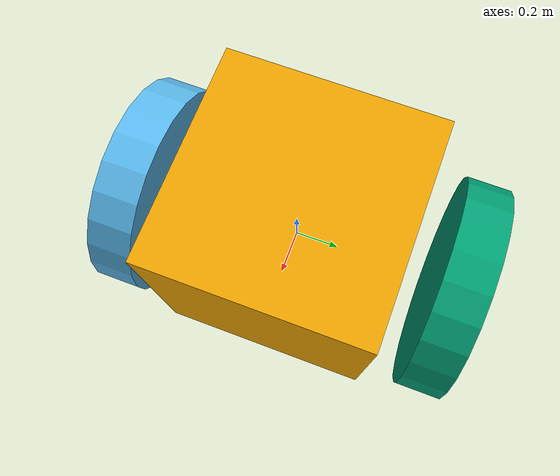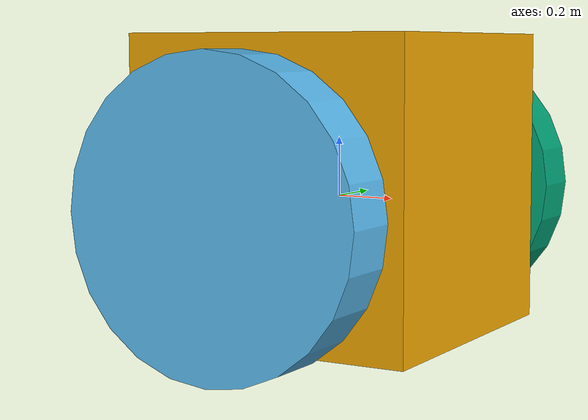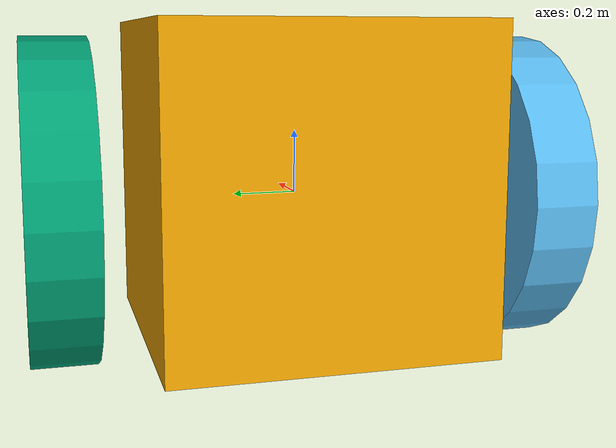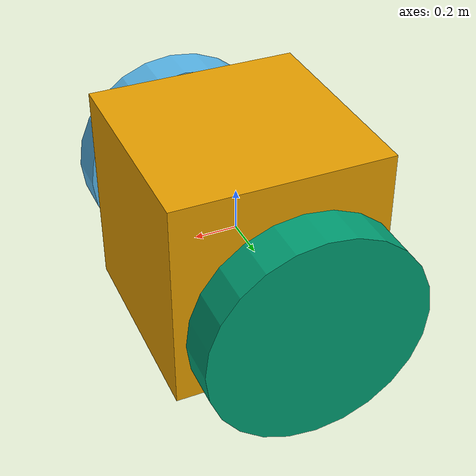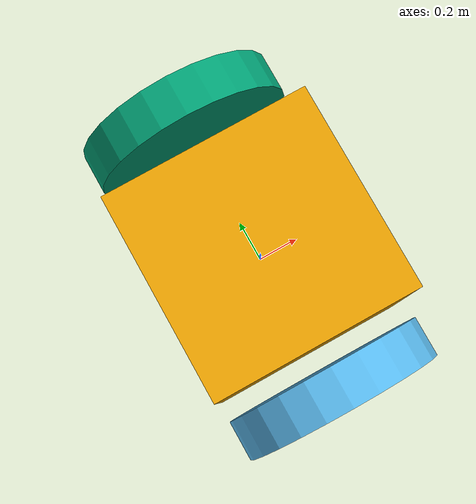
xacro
<?xml version="1.0"?>
<robot xmlns:xacro="http://www.ros.org/wiki/xacro" name="robot1">

    <xacro:include filename="$(find urdftut)/urdf/two_wheeler.gazebo"/>

    <link name="chassis">
        <pose>0 0 0.1 0 0 0</pose>

        <inertial>
            <mass value="15.0"/>
            <origin xyz="0.0 0 0" rpy=" 0 0 0"/>
            <inertia
                ixx="0.1" ixy="0" ixz="0"
                iyy="0.1" iyz="0"
                izz="0.1"
            />
        </inertial>

        <collision name='collision'>
            <origin xyz="0 0 0.05" rpy=" 0 0 0"/>
            <geometry>
                <box size="1 1 1"/>
            </geometry>
        </collision>

        <visual name='chassis_visual'>
            <origin xyz="0 0 0.05" rpy=" 0 0 0"/>
            <geometry>
                <box size="1 1 1"/>
            </geometry>
        </visual>

        <collision name='back_caster_collision'>
            <origin xyz="-0.3 0 -0.45" rpy=" 0 0 0"/>
            <geometry>
                <sphere radius="0.0499"/>
            </geometry>
        </collision>

        <visual name='back_caster_visual'>
            <origin xyz="-0.3 0 -0.44" rpy=" 0 0 0"/>
            <geometry>
                <sphere radius="0.05"/>
            </geometry>
        </visual>

        <collision name='front_caster_collision'>
            <origin xyz="0.3 0 -0.44" rpy=" 0 0 0"/>
            <geometry>
                <sphere radius="0.0499"/>
            </geometry>
        </collision>

        <visual name='front_caster_visual'>
            <origin xyz="0.3 0 -0.44" rpy=" 0 0 0"/>
            <geometry>
                <sphere radius="0.05"/>
            </geometry>
        </visual>

    </link>

    <link name="right_wheel">

        <inertial>
            <origin xyz="0.0 0.0 0.0" rpy="0.0 1.5707 1.5707"/>
            <mass value="2.5"/>
            <inertia    ixx="0.1" ixy="0.0" ixz="0.0"
                        iyy="0.1" iyz="0.0"
                        izz="0.1"
            />
        </inertial>

        <collision>
            <origin xyz="0 0 0" rpy="0 1.5707 1.5707"/>
            <geometry>
                <cylinder radius="0.5" length="0.2"/>
            </geometry>
        </collision>

        <visual>
            <origin xyz="0 0 0" rpy="0 1.5707 1.5707"/>
            <geometry>
                <cylinder radius="0.5" length="0.2"/>
            </geometry>
        </visual>

    </link>

    <link name="left_wheel">

        <inertial>
            <origin xyz="0.0 0.0 0.0" rpy="0.0 1.5707 1.5707"/>
            <mass value="2.5"/>
            <inertia    ixx="0.1" ixy="0.0" ixz="0.0"
                        iyy="0.1" iyz="0.0"
                        izz="0.1"
            />
        </inertial>

        <collision>
            <origin xyz="0 0 0" rpy="0 1.5707 1.5707"/>
            <geometry>
                <cylinder radius="0.5" length="0.2"/>
            </geometry>
        </collision>

        <visual>
            <origin xyz="0 0 0" rpy="0 1.5707 1.5707"/>
            <geometry>
                <cylinder radius="0.5" length="0.2"/>
            </geometry>
        </visual>

    </link>

    <link name="base_link">
    </link>

    <joint name="base_link_joint" type="fixed">
        <origin xyz="0 0 0" rpy="0 0 0" />
        <parent link="base_link"/>
        <child link="chassis" />
    </joint>

    <joint type="continuous" name="left_wheel_hinge">
        <origin xyz="0 0.75 0" rpy="0 0 0" />
        <parent link="chassis"/>
        <child link="left_wheel" />
        <axis xyz="0 1 0" rpy="0 0 0" />
        <limit effort="10000" velocity="1000" />
        <dynamics damping="1.0" friction="1.0" />
    </joint>

    <joint type="continuous" name="right_wheel_hinge">
        <origin xyz="0 -0.7 0" rpy="0 0 0" />
        <parent link="chassis"/>
        <child link="right_wheel" />
        <axis xyz="0 1 0" rpy="0 0 0" />
        <limit effort="10000" velocity="1000" />
        <dynamics damping="1.0" friction="1.0" />
    </joint>

</robot>
